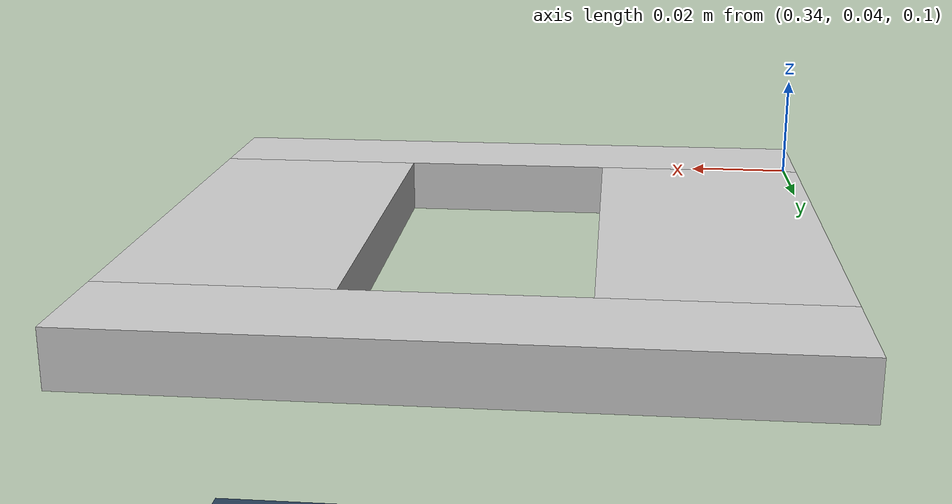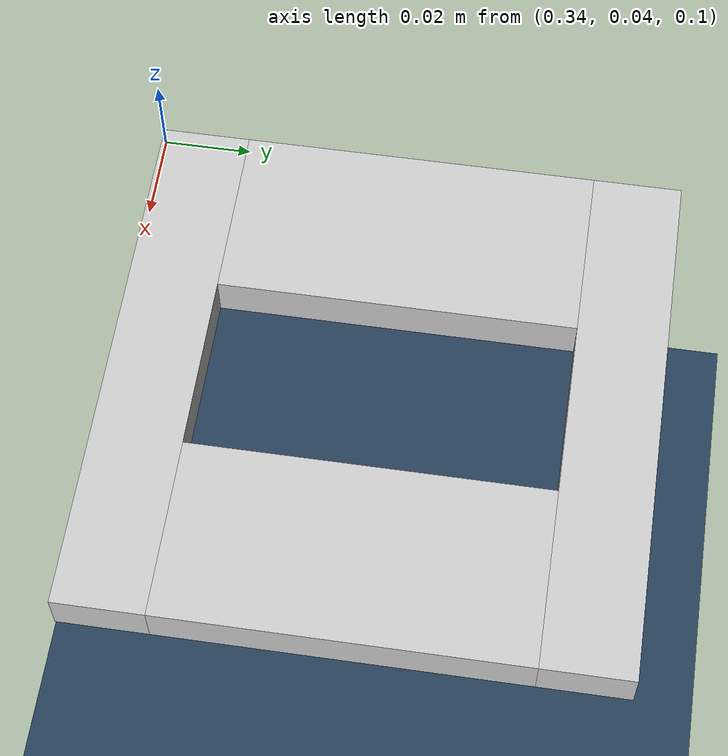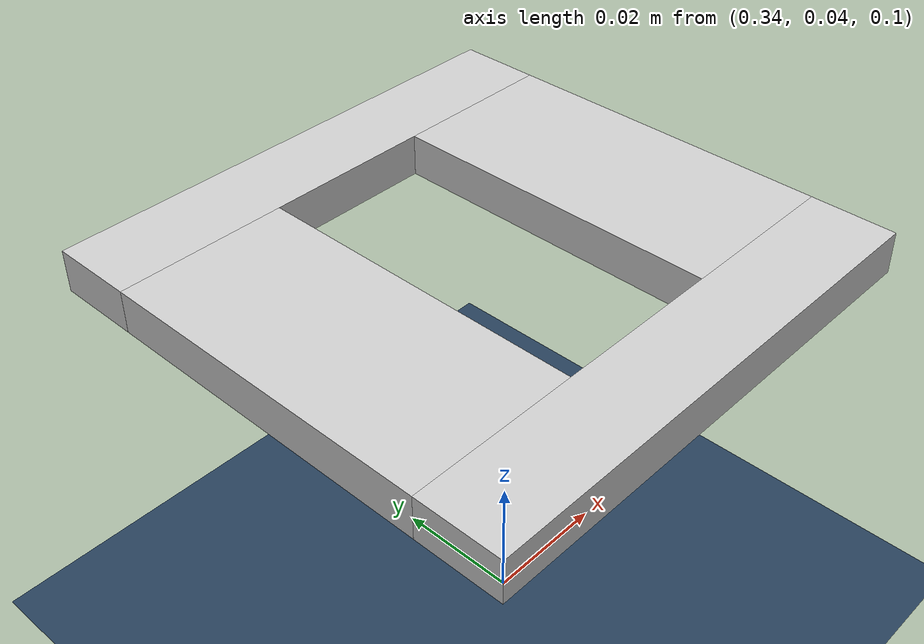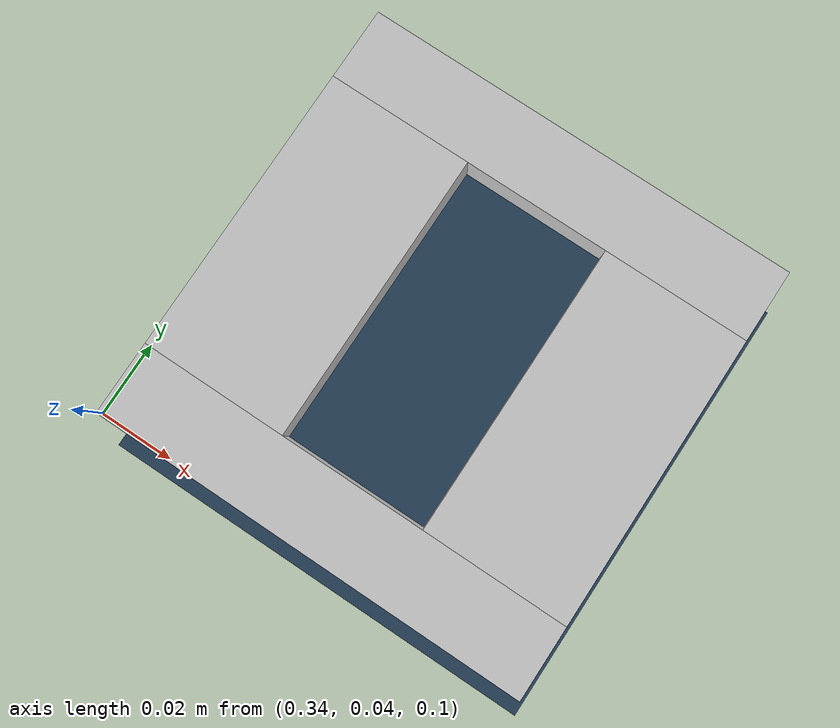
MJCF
<mujoco model="assembly_hole">
  <compiler angle="radian" />
  <option timestep="0.001"/>

  <asset>
    <texture type="skybox" builtin="gradient" rgb1="0.3 0.5 0.7" rgb2="0 0 0" width="512" height="3072"/>
    <texture type="2d" name="groundplane" builtin="checker" mark="edge" rgb1="0.2 0.3 0.4" rgb2="0.1 0.2 0.3" markrgb="0.8 0.8 0.8" width="300" height="300"/>
    <material name="groundplane" texture="groundplane" texuniform="true" texrepeat="5 5" reflectance="0.2"/>
  </asset>

  <worldbody>
    <light pos="0 0 1.5" dir="0 0 -1" directional="true"/>
    <geom name="floor" size="0 0 0.05" type="plane" material="groundplane"/>

    <body name="down" pos="0.4 0.15 0.1" quat="0.707107 0.707107 0 0">
      <geom name="down_geom" type="box" size="0.06 0.005 0.01" rgba="0.8 0.8 0.8 1"/>
      <body name="left" pos="-0.04 0 0.05">
        <geom name="left_geom" type="box" size="0.02 0.005 0.04" rgba="0.8 0.8 0.8 1"/>
        <body name="top" pos="0.04 0 0.05">
          <geom name="top_geom" type="box" size="0.06 0.005 0.01" rgba="0.8 0.8 0.8 1"/>
        </body>
      </body>
      <body name="right" pos="0.04 0 0.05">
        <geom name="right_geom" type="box" size="0.02 0.005 0.04" rgba="0.8 0.8 0.8 1"/>
      </body>
      <site name="hole" pos="0 0 0.05" size="0.01" rgba="0.5 0.0 0.0 0.3" group="4"/>
    </body>

    <body name="camera_center" euler="0  0.0  0" pos="0.0 0.0 0.0"></body>
    <body name="fixed_camera_body" euler="0  0  0" pos="0.7 0.25 0.7">
      <camera name="fixed_camera"  mode="targetbody" target="camera_center" fovy="42.5" />
    </body>
  </worldbody>
</mujoco>
